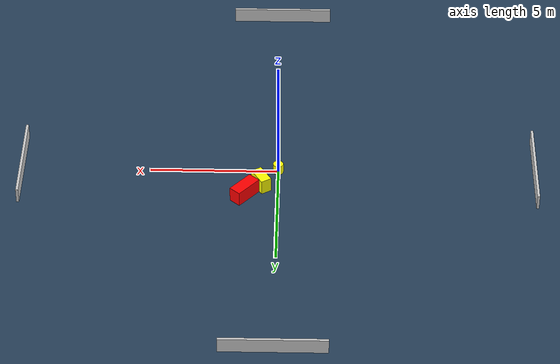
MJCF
<?xml version="1.0" ?>
<mujoco model="generated_environment">
  <option timestep="0.01" integrator="RK4" cone="elliptic"/>
  <default>
    <geom density="1"/>
  </default>
  <asset>
    <texture builtin="gradient" height="3072" name="skybox" rgb1="0.3 0.5 0.7" rgb2="0 0 0" type="skybox" width="512"/>
    <texture builtin="checker" height="300" name="groundplane" rgb1="0.2 0.3 0.4" rgb2="0.1 0.2 0.3" type="2d" width="300"/>
    <material name="groundplane" reflectance="0.2" texrepeat="5 5" texture="groundplane"/>
  </asset>
  <worldbody>
    <light dir="0 0 -1" directional="true" pos="0 0 1.5"/>
    <geom condim="3" friction="0.5 0.005 0.001" material="groundplane" name="floor" pos="0 0 0" size="0 0 0.05" type="plane"/>
    <body name="walls">
      <geom name="wall_1" condim="4" pos="-10.0 0.0 0.3" rgba="0.800000011920929 0.800000011920929 0.800000011920929 1.0" size="0.05 2.0 0.3" type="box"/>
      <geom name="wall_2" condim="4" pos="10.0 0.0 0.3" rgba="0.800000011920929 0.800000011920929 0.800000011920929 1.0" size="0.05 2.0 0.3" type="box"/>
      <geom name="wall_3" condim="4" pos="0.0 -10.0 0.3" rgba="0.800000011920929 0.800000011920929 0.800000011920929 1.0" size="2.0 0.05 0.3" type="box"/>
      <geom name="wall_4" condim="4" pos="0.0 10.0 0.3" rgba="0.800000011920929 0.800000011920929 0.800000011920929 1.0" size="2.0 0.05 0.3" type="box"/>
    </body>
    <body name="robot">
      <joint name="joint_x" type="slide" pos="0 0 0" axis="1 0 0"/>
      <joint name="joint_y" type="slide" pos="0 0 0" axis="0 1 0"/>
      <geom name="robot" type="cylinder" pos="0.0 0.0 0.2" size="0.2 0.2 0.0" mass="5.0" friction="1.0 0.005 0.0001" condim="4" rgba="1.0 1.0 0.0 1.0"/>
    </body>
    <body name="obstacle_1_movable">
      <geom name="obstacle_1_movable" condim="4" pos="0.6437873927890239 0.9045822261134118 0.3" euler="0 0 211.15034031823123" friction="0.0 0.005 0.001" rgba="1.0 1.0 0.0 1.0" size="0.215315618717304 0.3964003428296261 0.3" type="box" mass="0.1"/>
      <joint type="free"/>
    </body>
    <body name="obstacle_2_static">
      <geom name="obstacle_2_static" condim="4" pos="1.2743348717820102 1.4765490311956315 0.3" euler="0 0 318.73421357281086" friction="0.0 0.005 0.001" rgba="1.0 0.0 0.0 1.0" size="0.24765448550506022 0.5591127449214018 0.3" type="box"/>
    </body>
  </worldbody>
  <actuator>
    <motor name="actuator_x" joint="joint_x" gear="1" ctrlrange="-1 1"/>
    <motor name="actuator_y" joint="joint_y" gear="1" ctrlrange="-1 1"/>
  </actuator>
</mujoco>
